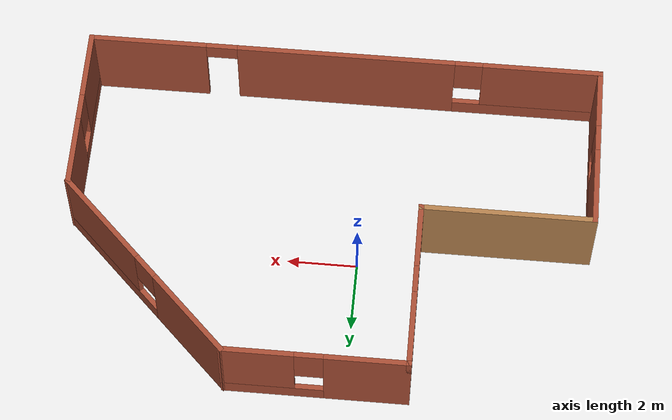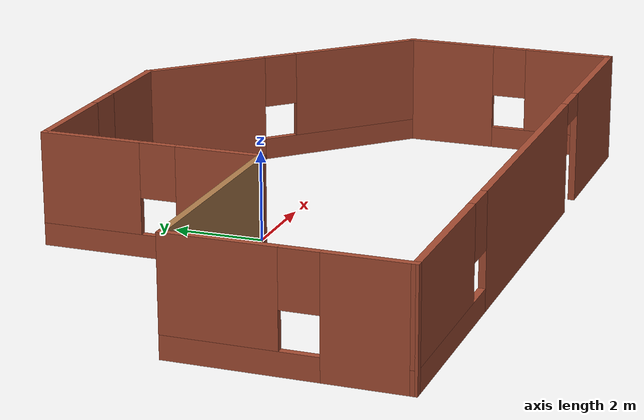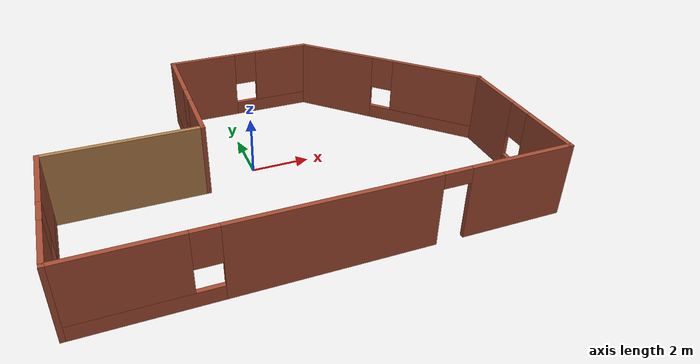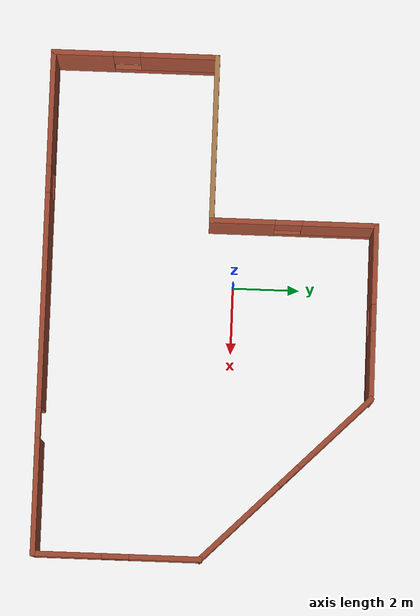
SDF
<?xml version='1.0'?>
<sdf version='1.6'>
  <model name='building'>
    <pose frame=''>0.836821 -0.695715 0 0 -0 0</pose>
    <link name='Wall_0'>
      <pose frame=''>-7.41236 -2.44052 0 0 -0 1.5708</pose>
      <visual name='Wall_0_Visual_0'>
        <pose frame=''>-1.57983 0 1.25 0 -0 0</pose>
        <geometry>
          <box>
            <size>1.84034 0.15 2.5</size>
          </box>
        </geometry>
        <material>
          <script>
            <uri>file://media/materials/scripts/gazebo.material</uri>
            <name>Gazebo/Bricks</name>
          </script>
          <ambient>1 1 1 1</ambient>
        </material>
        <meta>
          <layer>0</layer>
        </meta>
      </visual>
      <collision name='Wall_0_Collision_0'>
        <geometry>
          <box>
            <size>1.84034 0.15 2.5</size>
          </box>
        </geometry>
        <pose frame=''>-1.57983 0 1.25 0 -0 0</pose>
      </collision>
      <visual name='Wall_0_Visual_1'>
        <pose frame=''>0.92017 0 0.25 0 -0 0</pose>
        <geometry>
          <box>
            <size>3.15966 0.15 0.5</size>
          </box>
        </geometry>
        <material>
          <script>
            <uri>file://media/materials/scripts/gazebo.material</uri>
            <name>Gazebo/Bricks</name>
          </script>
          <ambient>1 1 1 1</ambient>
        </material>
        <meta>
          <layer>0</layer>
        </meta>
      </visual>
      <collision name='Wall_0_Collision_1'>
        <geometry>
          <box>
            <size>3.15966 0.15 0.5</size>
          </box>
        </geometry>
        <pose frame=''>0.92017 0 0.25 0 -0 0</pose>
      </collision>
      <visual name='Wall_0_Visual_2'>
        <pose frame=''>1.32017 0 1.5 0 -0 0</pose>
        <geometry>
          <box>
            <size>2.35966 0.15 2</size>
          </box>
        </geometry>
        <material>
          <script>
            <uri>file://media/materials/scripts/gazebo.material</uri>
            <name>Gazebo/Bricks</name>
          </script>
          <ambient>1 1 1 1</ambient>
        </material>
        <meta>
          <layer>0</layer>
        </meta>
      </visual>
      <collision name='Wall_0_Collision_2'>
        <geometry>
          <box>
            <size>2.35966 0.15 2</size>
          </box>
        </geometry>
        <pose frame=''>1.32017 0 1.5 0 -0 0</pose>
      </collision>
      <visual name='Wall_0_Visual_3'>
        <pose frame=''>-0.25966 0 1.9 0 -0 0</pose>
        <geometry>
          <box>
            <size>0.8 0.15 1.2</size>
          </box>
        </geometry>
        <material>
          <script>
            <uri>file://media/materials/scripts/gazebo.material</uri>
            <name>Gazebo/Bricks</name>
          </script>
          <ambient>1 1 1 1</ambient>
        </material>
        <meta>
          <layer>0</layer>
        </meta>
      </visual>
      <collision name='Wall_0_Collision_3'>
        <geometry>
          <box>
            <size>0.8 0.15 1.2</size>
          </box>
        </geometry>
        <pose frame=''>-0.25966 0 1.9 0 -0 0</pose>
      </collision>
    </link>
    <link name='Wall_1'>
      <collision name='Wall_1_Collision'>
        <geometry>
          <box>
            <size>5 0.15 2.5</size>
          </box>
        </geometry>
        <pose frame=''>0 0 1.25 0 -0 0</pose>
      </collision>
      <visual name='Wall_1_Visual'>
        <pose frame=''>0 0 1.25 0 -0 0</pose>
        <geometry>
          <box>
            <size>5 0.15 2.5</size>
          </box>
        </geometry>
        <material>
          <script>
            <uri>file://media/materials/scripts/gazebo.material</uri>
            <name>Gazebo/Wood</name>
          </script>
          <ambient>1 1 1 1</ambient>
        </material>
        <meta>
          <layer>0</layer>
        </meta>
      </visual>
      <pose frame=''>-4.98736 -0.015517 0 0 -0 0</pose>
    </link>
    <link name='Wall_2'>
      <pose frame=''>-2.56236 2.40948 0 0 -0 1.5708</pose>
      <visual name='Wall_2_Visual_0'>
        <pose frame=''>-1.52702 0 1.25 0 -0 0</pose>
        <geometry>
          <box>
            <size>1.94596 0.15 2.5</size>
          </box>
        </geometry>
        <material>
          <script>
            <uri>file://media/materials/scripts/gazebo.material</uri>
            <name>Gazebo/Bricks</name>
          </script>
          <ambient>1 1 1 1</ambient>
        </material>
        <meta>
          <layer>0</layer>
        </meta>
      </visual>
      <collision name='Wall_2_Collision_0'>
        <geometry>
          <box>
            <size>1.94596 0.15 2.5</size>
          </box>
        </geometry>
        <pose frame=''>-1.52702 0 1.25 0 -0 0</pose>
      </collision>
      <visual name='Wall_2_Visual_1'>
        <pose frame=''>0.972979 0 0.25 0 -0 0</pose>
        <geometry>
          <box>
            <size>3.05404 0.15 0.5</size>
          </box>
        </geometry>
        <material>
          <script>
            <uri>file://media/materials/scripts/gazebo.material</uri>
            <name>Gazebo/Bricks</name>
          </script>
          <ambient>1 1 1 1</ambient>
        </material>
        <meta>
          <layer>0</layer>
        </meta>
      </visual>
      <collision name='Wall_2_Collision_1'>
        <geometry>
          <box>
            <size>3.05404 0.15 0.5</size>
          </box>
        </geometry>
        <pose frame=''>0.972979 0 0.25 0 -0 0</pose>
      </collision>
      <visual name='Wall_2_Visual_2'>
        <pose frame=''>1.37298 0 1.5 0 -0 0</pose>
        <geometry>
          <box>
            <size>2.25404 0.15 2</size>
          </box>
        </geometry>
        <material>
          <script>
            <uri>file://media/materials/scripts/gazebo.material</uri>
            <name>Gazebo/Bricks</name>
          </script>
          <ambient>1 1 1 1</ambient>
        </material>
        <meta>
          <layer>0</layer>
        </meta>
      </visual>
      <collision name='Wall_2_Collision_2'>
        <geometry>
          <box>
            <size>2.25404 0.15 2</size>
          </box>
        </geometry>
        <pose frame=''>1.37298 0 1.5 0 -0 0</pose>
      </collision>
      <visual name='Wall_2_Visual_3'>
        <pose frame=''>-0.154043 0 1.9 0 -0 0</pose>
        <geometry>
          <box>
            <size>0.8 0.15 1.2</size>
          </box>
        </geometry>
        <material>
          <script>
            <uri>file://media/materials/scripts/gazebo.material</uri>
            <name>Gazebo/Bricks</name>
          </script>
          <ambient>1 1 1 1</ambient>
        </material>
        <meta>
          <layer>0</layer>
        </meta>
      </visual>
      <collision name='Wall_2_Collision_3'>
        <geometry>
          <box>
            <size>0.8 0.15 1.2</size>
          </box>
        </geometry>
        <pose frame=''>-0.154043 0 1.9 0 -0 0</pose>
      </collision>
    </link>
    <link name='Wall_4'>
      <pose frame=''>-0.012358 4.83448 0 0 -0 0</pose>
      <visual name='Wall_4_Visual_0'>
        <pose frame=''>-1.43193 0 1.25 0 -0 0</pose>
        <geometry>
          <box>
            <size>2.38614 0.15 2.5</size>
          </box>
        </geometry>
        <material>
          <script>
            <uri>file://media/materials/scripts/gazebo.material</uri>
            <name>Gazebo/Bricks</name>
          </script>
          <ambient>1 1 1 1</ambient>
        </material>
        <meta>
          <layer>0</layer>
        </meta>
      </visual>
      <collision name='Wall_4_Collision_0'>
        <geometry>
          <box>
            <size>2.38614 0.15 2.5</size>
          </box>
        </geometry>
        <pose frame=''>-1.43193 0 1.25 0 -0 0</pose>
      </collision>
      <visual name='Wall_4_Visual_1'>
        <pose frame=''>1.19307 0 0.25 0 -0 0</pose>
        <geometry>
          <box>
            <size>2.86386 0.15 0.5</size>
          </box>
        </geometry>
        <material>
          <script>
            <uri>file://media/materials/scripts/gazebo.material</uri>
            <name>Gazebo/Bricks</name>
          </script>
          <ambient>1 1 1 1</ambient>
        </material>
        <meta>
          <layer>0</layer>
        </meta>
      </visual>
      <collision name='Wall_4_Collision_1'>
        <geometry>
          <box>
            <size>2.86386 0.15 0.5</size>
          </box>
        </geometry>
        <pose frame=''>1.19307 0 0.25 0 -0 0</pose>
      </collision>
      <visual name='Wall_4_Visual_2'>
        <pose frame=''>1.59307 0 1.5 0 -0 0</pose>
        <geometry>
          <box>
            <size>2.06386 0.15 2</size>
          </box>
        </geometry>
        <material>
          <script>
            <uri>file://media/materials/scripts/gazebo.material</uri>
            <name>Gazebo/Bricks</name>
          </script>
          <ambient>1 1 1 1</ambient>
        </material>
        <meta>
          <layer>0</layer>
        </meta>
      </visual>
      <collision name='Wall_4_Collision_2'>
        <geometry>
          <box>
            <size>2.06386 0.15 2</size>
          </box>
        </geometry>
        <pose frame=''>1.59307 0 1.5 0 -0 0</pose>
      </collision>
      <visual name='Wall_4_Visual_3'>
        <pose frame=''>0.161138 0 1.9 0 -0 0</pose>
        <geometry>
          <box>
            <size>0.8 0.15 1.2</size>
          </box>
        </geometry>
        <material>
          <script>
            <uri>file://media/materials/scripts/gazebo.material</uri>
            <name>Gazebo/Bricks</name>
          </script>
          <ambient>1 1 1 1</ambient>
        </material>
        <meta>
          <layer>0</layer>
        </meta>
      </visual>
      <collision name='Wall_4_Collision_3'>
        <geometry>
          <box>
            <size>0.8 0.15 1.2</size>
          </box>
        </geometry>
        <pose frame=''>0.161138 0 1.9 0 -0 0</pose>
      </collision>
    </link>
    <link name='Wall_5'>
      <pose frame=''>4.95948 2.41264 0 0 0 -0.785398</pose>
      <visual name='Wall_5_Visual_0'>
        <pose frame=''>-2.01623 0 1.25 0 -0 0</pose>
        <geometry>
          <box>
            <size>2.96754 0.15 2.5</size>
          </box>
        </geometry>
        <material>
          <script>
            <uri>file://media/materials/scripts/gazebo.material</uri>
            <name>Gazebo/Bricks</name>
          </script>
          <ambient>1 1 1 1</ambient>
        </material>
        <meta>
          <layer>0</layer>
        </meta>
      </visual>
      <collision name='Wall_5_Collision_0'>
        <geometry>
          <box>
            <size>2.96754 0.15 2.5</size>
          </box>
        </geometry>
        <pose frame=''>-2.01623 0 1.25 0 -0 0</pose>
      </collision>
      <visual name='Wall_5_Visual_1'>
        <pose frame=''>1.48377 0 0.25 0 -0 0</pose>
        <geometry>
          <box>
            <size>4.03246 0.15 0.5</size>
          </box>
        </geometry>
        <material>
          <script>
            <uri>file://media/materials/scripts/gazebo.material</uri>
            <name>Gazebo/Bricks</name>
          </script>
          <ambient>1 1 1 1</ambient>
        </material>
        <meta>
          <layer>0</layer>
        </meta>
      </visual>
      <collision name='Wall_5_Collision_1'>
        <geometry>
          <box>
            <size>4.03246 0.15 0.5</size>
          </box>
        </geometry>
        <pose frame=''>1.48377 0 0.25 0 -0 0</pose>
      </collision>
      <visual name='Wall_5_Visual_2'>
        <pose frame=''>1.88377 0 1.5 0 -0 0</pose>
        <geometry>
          <box>
            <size>3.23246 0.15 2</size>
          </box>
        </geometry>
        <material>
          <script>
            <uri>file://media/materials/scripts/gazebo.material</uri>
            <name>Gazebo/Bricks</name>
          </script>
          <ambient>1 1 1 1</ambient>
        </material>
        <meta>
          <layer>0</layer>
        </meta>
      </visual>
      <collision name='Wall_5_Collision_2'>
        <geometry>
          <box>
            <size>3.23246 0.15 2</size>
          </box>
        </geometry>
        <pose frame=''>1.88377 0 1.5 0 -0 0</pose>
      </collision>
      <visual name='Wall_5_Visual_3'>
        <pose frame=''>-0.132461 0 1.9 0 -0 0</pose>
        <geometry>
          <box>
            <size>0.8 0.15 1.2</size>
          </box>
        </geometry>
        <material>
          <script>
            <uri>file://media/materials/scripts/gazebo.material</uri>
            <name>Gazebo/Bricks</name>
          </script>
          <ambient>1 1 1 1</ambient>
        </material>
        <meta>
          <layer>0</layer>
        </meta>
      </visual>
      <collision name='Wall_5_Collision_3'>
        <geometry>
          <box>
            <size>0.8 0.15 1.2</size>
          </box>
        </geometry>
        <pose frame=''>-0.132461 0 1.9 0 -0 0</pose>
      </collision>
    </link>
    <link name='Wall_6'>
      <pose frame=''>7.38132 -2.4342 0 0 0 -1.5708</pose>
      <visual name='Wall_6_Visual_0'>
        <pose frame=''>-1.43937 0 1.25 0 -0 0</pose>
        <geometry>
          <box>
            <size>2.12126 0.15 2.5</size>
          </box>
        </geometry>
        <material>
          <script>
            <uri>file://media/materials/scripts/gazebo.material</uri>
            <name>Gazebo/Bricks</name>
          </script>
          <ambient>1 1 1 1</ambient>
        </material>
        <meta>
          <layer>0</layer>
        </meta>
      </visual>
      <collision name='Wall_6_Collision_0'>
        <geometry>
          <box>
            <size>2.12126 0.15 2.5</size>
          </box>
        </geometry>
        <pose frame=''>-1.43937 0 1.25 0 -0 0</pose>
      </collision>
      <visual name='Wall_6_Visual_1'>
        <pose frame=''>1.06063 0 0.25 0 -0 0</pose>
        <geometry>
          <box>
            <size>2.87874 0.15 0.5</size>
          </box>
        </geometry>
        <material>
          <script>
            <uri>file://media/materials/scripts/gazebo.material</uri>
            <name>Gazebo/Bricks</name>
          </script>
          <ambient>1 1 1 1</ambient>
        </material>
        <meta>
          <layer>0</layer>
        </meta>
      </visual>
      <collision name='Wall_6_Collision_1'>
        <geometry>
          <box>
            <size>2.87874 0.15 0.5</size>
          </box>
        </geometry>
        <pose frame=''>1.06063 0 0.25 0 -0 0</pose>
      </collision>
      <visual name='Wall_6_Visual_2'>
        <pose frame=''>1.46063 0 1.5 0 -0 0</pose>
        <geometry>
          <box>
            <size>2.07874 0.15 2</size>
          </box>
        </geometry>
        <material>
          <script>
            <uri>file://media/materials/scripts/gazebo.material</uri>
            <name>Gazebo/Bricks</name>
          </script>
          <ambient>1 1 1 1</ambient>
        </material>
        <meta>
          <layer>0</layer>
        </meta>
      </visual>
      <collision name='Wall_6_Collision_2'>
        <geometry>
          <box>
            <size>2.07874 0.15 2</size>
          </box>
        </geometry>
        <pose frame=''>1.46063 0 1.5 0 -0 0</pose>
      </collision>
      <visual name='Wall_6_Visual_3'>
        <pose frame=''>0.021256 0 1.9 0 -0 0</pose>
        <geometry>
          <box>
            <size>0.8 0.15 1.2</size>
          </box>
        </geometry>
        <material>
          <script>
            <uri>file://media/materials/scripts/gazebo.material</uri>
            <name>Gazebo/Bricks</name>
          </script>
          <ambient>1 1 1 1</ambient>
        </material>
        <meta>
          <layer>0</layer>
        </meta>
      </visual>
      <collision name='Wall_6_Collision_3'>
        <geometry>
          <box>
            <size>0.8 0.15 1.2</size>
          </box>
        </geometry>
        <pose frame=''>0.021256 0 1.9 0 -0 0</pose>
      </collision>
    </link>
    <link name='Wall_7'>
      <pose frame=''>-0.015517 -4.86236 0 0 0 -3.14117</pose>
      <visual name='Wall_7_Visual_0'>
        <pose frame=''>-5.75613 0 1.25 0 -0 0</pose>
        <geometry>
          <box>
            <size>3.43142 0.15 2.5</size>
          </box>
        </geometry>
        <material>
          <script>
            <uri>file://media/materials/scripts/gazebo.material</uri>
            <name>Gazebo/Bricks</name>
          </script>
          <ambient>1 1 1 1</ambient>
        </material>
        <meta>
          <layer>0</layer>
        </meta>
      </visual>
      <collision name='Wall_7_Collision_0'>
        <geometry>
          <box>
            <size>3.43142 0.15 2.5</size>
          </box>
        </geometry>
        <pose frame=''>-5.75613 0 1.25 0 -0 0</pose>
      </collision>
      <visual name='Wall_7_Visual_1'>
        <pose frame=''>0.028901 0 1.25 0 -0 0</pose>
        <geometry>
          <box>
            <size>6.33865 0.15 2.5</size>
          </box>
        </geometry>
        <material>
          <script>
            <uri>file://media/materials/scripts/gazebo.material</uri>
            <name>Gazebo/Bricks</name>
          </script>
          <ambient>1 1 1 1</ambient>
        </material>
        <meta>
          <layer>0</layer>
        </meta>
      </visual>
      <collision name='Wall_7_Collision_1'>
        <geometry>
          <box>
            <size>6.33865 0.15 2.5</size>
          </box>
        </geometry>
        <pose frame=''>0.028901 0 1.25 0 -0 0</pose>
      </collision>
      <visual name='Wall_7_Visual_2'>
        <pose frame=''>5.33503 0 0.25 0 -0 0</pose>
        <geometry>
          <box>
            <size>4.27362 0.15 0.5</size>
          </box>
        </geometry>
        <material>
          <script>
            <uri>file://media/materials/scripts/gazebo.material</uri>
            <name>Gazebo/Bricks</name>
          </script>
          <ambient>1 1 1 1</ambient>
        </material>
        <meta>
          <layer>0</layer>
        </meta>
      </visual>
      <collision name='Wall_7_Collision_2'>
        <geometry>
          <box>
            <size>4.27362 0.15 0.5</size>
          </box>
        </geometry>
        <pose frame=''>5.33503 0 0.25 0 -0 0</pose>
      </collision>
      <visual name='Wall_7_Visual_3'>
        <pose frame=''>5.73503 0 1.5 0 -0 0</pose>
        <geometry>
          <box>
            <size>3.47362 0.15 2</size>
          </box>
        </geometry>
        <material>
          <script>
            <uri>file://media/materials/scripts/gazebo.material</uri>
            <name>Gazebo/Bricks</name>
          </script>
          <ambient>1 1 1 1</ambient>
        </material>
        <meta>
          <layer>0</layer>
        </meta>
      </visual>
      <collision name='Wall_7_Collision_3'>
        <geometry>
          <box>
            <size>3.47362 0.15 2</size>
          </box>
        </geometry>
        <pose frame=''>5.73503 0 1.5 0 -0 0</pose>
      </collision>
      <visual name='Wall_7_Visual_4'>
        <pose frame=''>3.59823 0 1.9 0 -0 0</pose>
        <geometry>
          <box>
            <size>0.8 0.15 1.2</size>
          </box>
        </geometry>
        <material>
          <script>
            <uri>file://media/materials/scripts/gazebo.material</uri>
            <name>Gazebo/Bricks</name>
          </script>
          <ambient>1 1 1 1</ambient>
        </material>
        <meta>
          <layer>0</layer>
        </meta>
      </visual>
      <collision name='Wall_7_Collision_4'>
        <geometry>
          <box>
            <size>0.8 0.15 1.2</size>
          </box>
        </geometry>
        <pose frame=''>3.59823 0 1.9 0 -0 0</pose>
      </collision>
      <visual name='Wall_7_Visual_5'>
        <pose frame=''>-3.59042 0 2.25 0 -0 0</pose>
        <geometry>
          <box>
            <size>0.9 0.15 0.5</size>
          </box>
        </geometry>
        <material>
          <script>
            <uri>file://media/materials/scripts/gazebo.material</uri>
            <name>Gazebo/Bricks</name>
          </script>
          <ambient>1 1 1 1</ambient>
        </material>
        <meta>
          <layer>0</layer>
        </meta>
      </visual>
      <collision name='Wall_7_Collision_5'>
        <geometry>
          <box>
            <size>0.9 0.15 0.5</size>
          </box>
        </geometry>
        <pose frame=''>-3.59042 0 2.25 0 -0 0</pose>
      </collision>
    </link>
    <static>1</static>
  </model>
</sdf>
